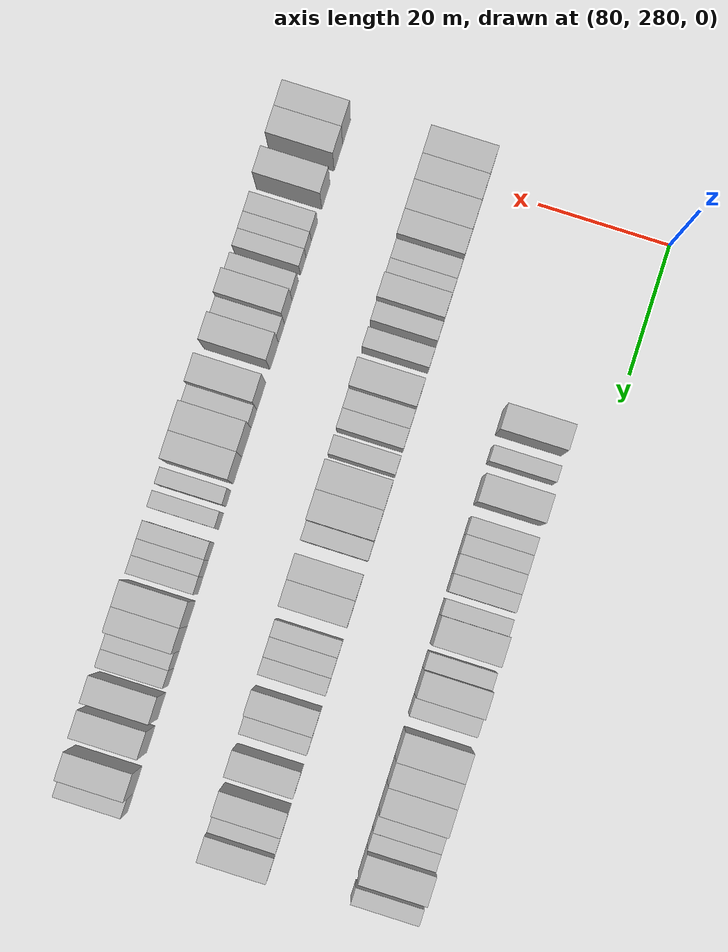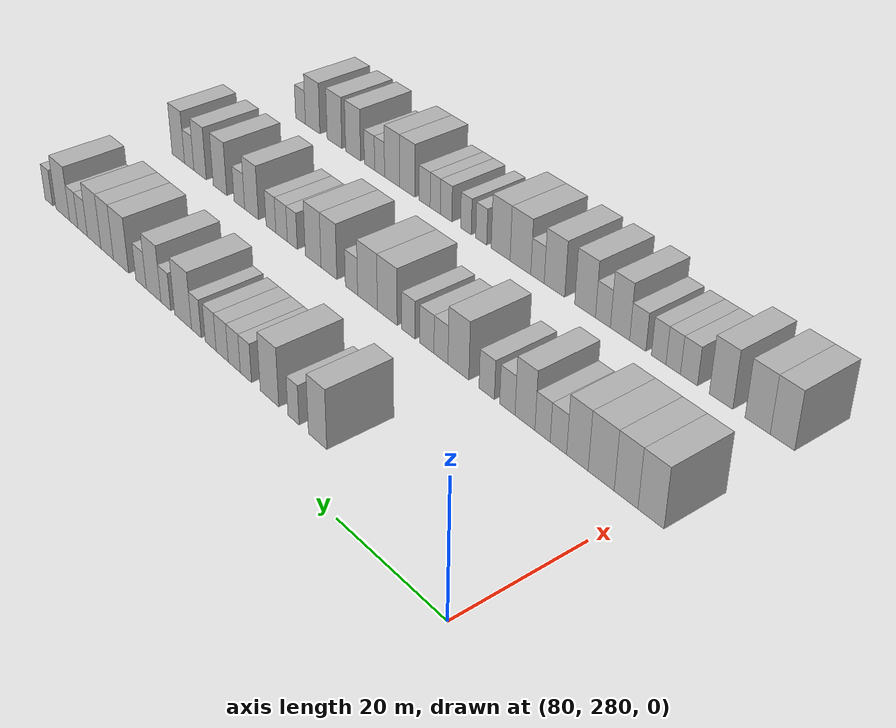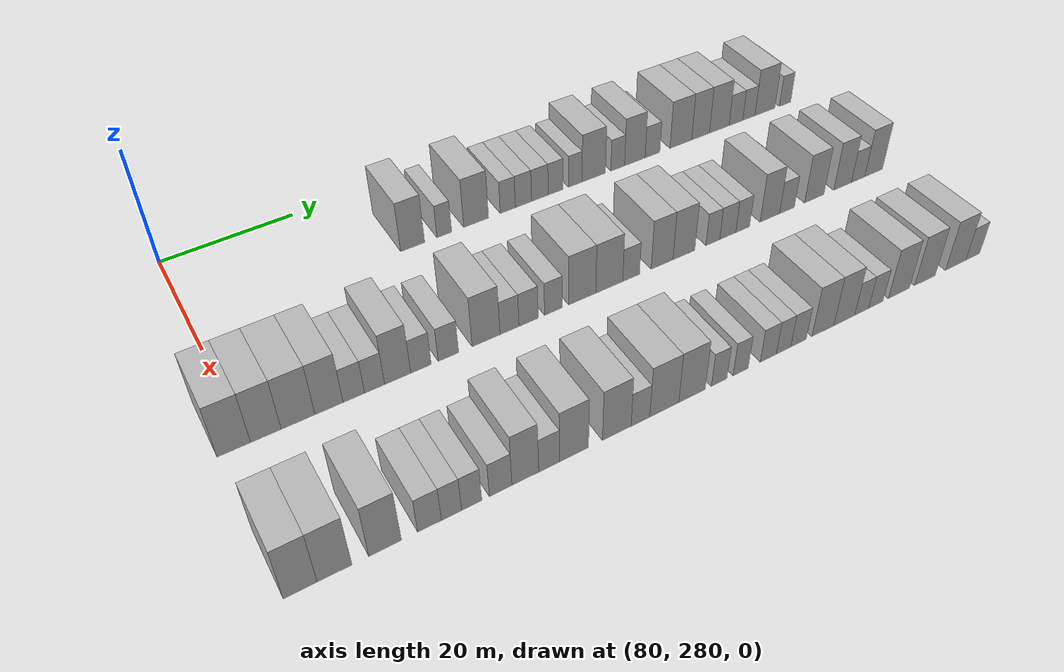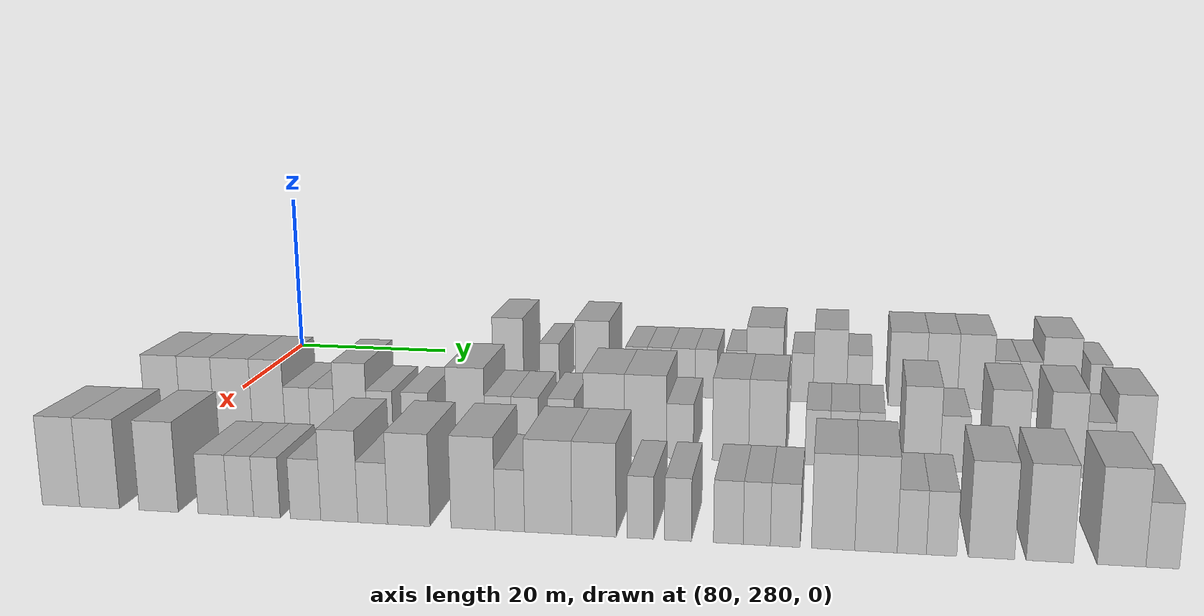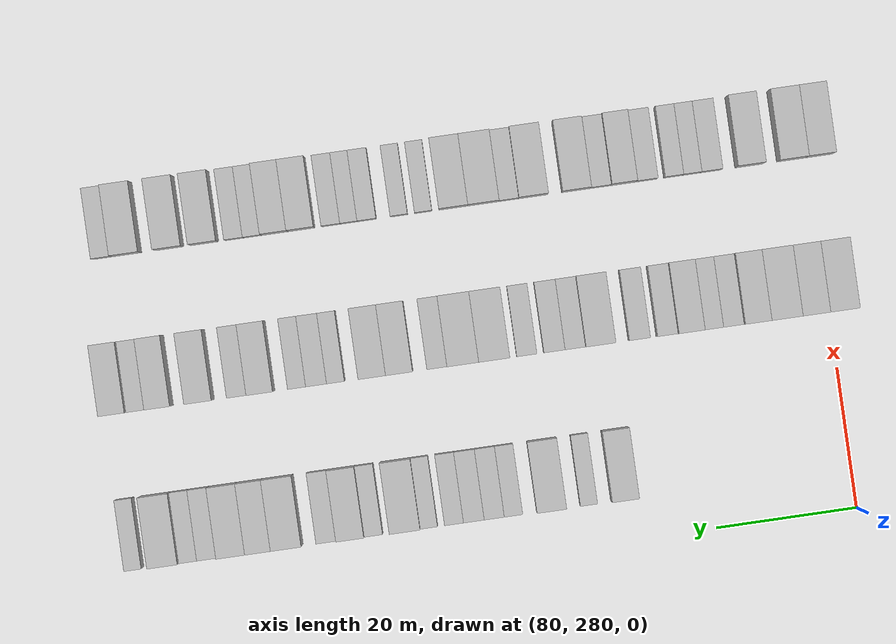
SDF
<sdf version="1.6">
 <world name="default">
  <model name="building_714">
   <static>1</static>
   <pose>91.0000 312.3939 0 0.000000 0.000000 0.000000</pose>
   <link name="link">
    <pose>0 0 4.50 0 0 0</pose>
    <collision name="collision"><geometry><box><size>10.0000 3.8322 9.0000</size></box></geometry></collision>
    <visual name="visual">
     <cast_shadows>0</cast_shadows>
     <geometry><box><size>10.0000 3.8322 9.0000</size></box></geometry>
     <material>
      <script>
       <uri>model://HANNAS_wall/materials/scripts</uri>
       <uri>model://HANNAS_wall/materials/textures</uri>
       <name>vrc/HANNAS_wall</name>
      </script>
     </material>
    </visual>
   </link>
  </model>
  <model name="building_715">
   <static>1</static>
   <pose>91.0000 317.5212 0 0.000000 0.000000 0.000000</pose>
   <link name="link">
    <pose>0 0 3.00 0 0 0</pose>
    <collision name="collision"><geometry><box><size>10.0000 2.4223 6.0000</size></box></geometry></collision>
    <visual name="visual">
     <cast_shadows>0</cast_shadows>
     <geometry><box><size>10.0000 2.4223 6.0000</size></box></geometry>
     <material>
      <script>
       <uri>model://HANNAS_wall/materials/scripts</uri>
       <uri>model://HANNAS_wall/materials/textures</uri>
       <name>vrc/HANNAS_wall</name>
      </script>
     </material>
    </visual>
   </link>
  </model>
  <model name="building_716">
   <static>1</static>
   <pose>91.0000 322.8168 0 0.000000 0.000000 0.000000</pose>
   <link name="link">
    <pose>0 0 4.50 0 0 0</pose>
    <collision name="collision"><geometry><box><size>10.0000 4.1690 9.0000</size></box></geometry></collision>
    <visual name="visual">
     <cast_shadows>0</cast_shadows>
     <geometry><box><size>10.0000 4.1690 9.0000</size></box></geometry>
     <material>
      <script>
       <uri>model://HANNAS_wall/materials/scripts</uri>
       <uri>model://HANNAS_wall/materials/textures</uri>
       <name>vrc/HANNAS_wall</name>
      </script>
     </material>
    </visual>
   </link>
  </model>
  <model name="building_717">
   <static>1</static>
   <pose>91.0000 328.2078 0 0.000000 0.000000 0.000000</pose>
   <link name="link">
    <pose>0 0 3.00 0 0 0</pose>
    <collision name="collision"><geometry><box><size>10.0000 2.6129 6.0000</size></box></geometry></collision>
    <visual name="visual">
     <cast_shadows>0</cast_shadows>
     <geometry><box><size>10.0000 2.6129 6.0000</size></box></geometry>
     <material>
      <script>
       <uri>model://HANNAS_wall/materials/scripts</uri>
       <uri>model://HANNAS_wall/materials/textures</uri>
       <name>vrc/HANNAS_wall</name>
      </script>
     </material>
    </visual>
   </link>
  </model>
  <model name="building_718">
   <static>1</static>
   <pose>91.0000 330.9367 0 0.000000 0.000000 0.000000</pose>
   <link name="link">
    <pose>0 0 3.00 0 0 0</pose>
    <collision name="collision"><geometry><box><size>10.0000 2.8450 6.0000</size></box></geometry></collision>
    <visual name="visual">
     <cast_shadows>0</cast_shadows>
     <geometry><box><size>10.0000 2.8450 6.0000</size></box></geometry>
     <material>
      <script>
       <uri>model://HANNAS_wall/materials/scripts</uri>
       <uri>model://HANNAS_wall/materials/textures</uri>
       <name>vrc/HANNAS_wall</name>
      </script>
     </material>
    </visual>
   </link>
  </model>
  <model name="building_719">
   <static>1</static>
   <pose>91.0000 333.8257 0 0.000000 0.000000 0.000000</pose>
   <link name="link">
    <pose>0 0 3.00 0 0 0</pose>
    <collision name="collision"><geometry><box><size>10.0000 2.9329 6.0000</size></box></geometry></collision>
    <visual name="visual">
     <cast_shadows>0</cast_shadows>
     <geometry><box><size>10.0000 2.9329 6.0000</size></box></geometry>
     <material>
      <script>
       <uri>model://HANNAS_wall/materials/scripts</uri>
       <uri>model://HANNAS_wall/materials/textures</uri>
       <name>vrc/HANNAS_wall</name>
      </script>
     </material>
    </visual>
   </link>
  </model>
  <model name="building_720">
   <static>1</static>
   <pose>91.0000 336.6312 0 0.000000 0.000000 0.000000</pose>
   <link name="link">
    <pose>0 0 3.00 0 0 0</pose>
    <collision name="collision"><geometry><box><size>10.0000 2.6782 6.0000</size></box></geometry></collision>
    <visual name="visual">
     <cast_shadows>0</cast_shadows>
     <geometry><box><size>10.0000 2.6782 6.0000</size></box></geometry>
     <material>
      <script>
       <uri>model://HANNAS_wall/materials/scripts</uri>
       <uri>model://HANNAS_wall/materials/textures</uri>
       <name>vrc/HANNAS_wall</name>
      </script>
     </material>
    </visual>
   </link>
  </model>
  <model name="building_721">
   <static>1</static>
   <pose>91.0000 340.1911 0 0.000000 0.000000 0.000000</pose>
   <link name="link">
    <pose>0 0 3.00 0 0 0</pose>
    <collision name="collision"><geometry><box><size>10.0000 2.4416 6.0000</size></box></geometry></collision>
    <visual name="visual">
     <cast_shadows>0</cast_shadows>
     <geometry><box><size>10.0000 2.4416 6.0000</size></box></geometry>
     <material>
      <script>
       <uri>model://HANNAS_wall/materials/scripts</uri>
       <uri>model://HANNAS_wall/materials/textures</uri>
       <name>vrc/HANNAS_wall</name>
      </script>
     </material>
    </visual>
   </link>
  </model>
  <model name="building_722">
   <static>1</static>
   <pose>91.0000 343.5843 0 0.000000 0.000000 0.000000</pose>
   <link name="link">
    <pose>0 0 4.50 0 0 0</pose>
    <collision name="collision"><geometry><box><size>10.0000 4.3447 9.0000</size></box></geometry></collision>
    <visual name="visual">
     <cast_shadows>0</cast_shadows>
     <geometry><box><size>10.0000 4.3447 9.0000</size></box></geometry>
     <material>
      <script>
       <uri>model://HANNAS_wall/materials/scripts</uri>
       <uri>model://HANNAS_wall/materials/textures</uri>
       <name>vrc/HANNAS_wall</name>
      </script>
     </material>
    </visual>
   </link>
  </model>
  <model name="building_723">
   <static>1</static>
   <pose>91.0000 348.0489 0 0.000000 0.000000 0.000000</pose>
   <link name="link">
    <pose>0 0 3.00 0 0 0</pose>
    <collision name="collision"><geometry><box><size>10.0000 2.5845 6.0000</size></box></geometry></collision>
    <visual name="visual">
     <cast_shadows>0</cast_shadows>
     <geometry><box><size>10.0000 2.5845 6.0000</size></box></geometry>
     <material>
      <script>
       <uri>model://HANNAS_wall/materials/scripts</uri>
       <uri>model://HANNAS_wall/materials/textures</uri>
       <name>vrc/HANNAS_wall</name>
      </script>
     </material>
    </visual>
   </link>
  </model>
  <model name="building_724">
   <static>1</static>
   <pose>91.0000 351.3135 0 0.000000 0.000000 0.000000</pose>
   <link name="link">
    <pose>0 0 4.50 0 0 0</pose>
    <collision name="collision"><geometry><box><size>10.0000 3.9448 9.0000</size></box></geometry></collision>
    <visual name="visual">
     <cast_shadows>0</cast_shadows>
     <geometry><box><size>10.0000 3.9448 9.0000</size></box></geometry>
     <material>
      <script>
       <uri>model://HANNAS_wall/materials/scripts</uri>
       <uri>model://HANNAS_wall/materials/textures</uri>
       <name>vrc/HANNAS_wall</name>
      </script>
     </material>
    </visual>
   </link>
  </model>
  <model name="building_725">
   <static>1</static>
   <pose>91.0000 354.7253 0 0.000000 0.000000 0.000000</pose>
   <link name="link">
    <pose>0 0 3.00 0 0 0</pose>
    <collision name="collision"><geometry><box><size>10.0000 2.8788 6.0000</size></box></geometry></collision>
    <visual name="visual">
     <cast_shadows>0</cast_shadows>
     <geometry><box><size>10.0000 2.8788 6.0000</size></box></geometry>
     <material>
      <script>
       <uri>model://HANNAS_wall/materials/scripts</uri>
       <uri>model://HANNAS_wall/materials/textures</uri>
       <name>vrc/HANNAS_wall</name>
      </script>
     </material>
    </visual>
   </link>
  </model>
  <model name="building_726">
   <static>1</static>
   <pose>91.0000 360.3305 0 0.000000 0.000000 0.000000</pose>
   <link name="link">
    <pose>0 0 4.50 0 0 0</pose>
    <collision name="collision"><geometry><box><size>10.0000 4.3316 9.0000</size></box></geometry></collision>
    <visual name="visual">
     <cast_shadows>0</cast_shadows>
     <geometry><box><size>10.0000 4.3316 9.0000</size></box></geometry>
     <material>
      <script>
       <uri>model://HANNAS_wall/materials/scripts</uri>
       <uri>model://HANNAS_wall/materials/textures</uri>
       <name>vrc/HANNAS_wall</name>
      </script>
     </material>
    </visual>
   </link>
  </model>
  <model name="building_727">
   <static>1</static>
   <pose>91.0000 364.3026 0 0.000000 0.000000 0.000000</pose>
   <link name="link">
    <pose>0 0 4.50 0 0 0</pose>
    <collision name="collision"><geometry><box><size>10.0000 3.6126 9.0000</size></box></geometry></collision>
    <visual name="visual">
     <cast_shadows>0</cast_shadows>
     <geometry><box><size>10.0000 3.6126 9.0000</size></box></geometry>
     <material>
      <script>
       <uri>model://HANNAS_wall/materials/scripts</uri>
       <uri>model://HANNAS_wall/materials/textures</uri>
       <name>vrc/HANNAS_wall</name>
      </script>
     </material>
    </visual>
   </link>
  </model>
  <model name="building_728">
   <static>1</static>
   <pose>91.0000 368.1407 0 0.000000 0.000000 0.000000</pose>
   <link name="link">
    <pose>0 0 4.50 0 0 0</pose>
    <collision name="collision"><geometry><box><size>10.0000 4.0636 9.0000</size></box></geometry></collision>
    <visual name="visual">
     <cast_shadows>0</cast_shadows>
     <geometry><box><size>10.0000 4.0636 9.0000</size></box></geometry>
     <material>
      <script>
       <uri>model://HANNAS_wall/materials/scripts</uri>
       <uri>model://HANNAS_wall/materials/textures</uri>
       <name>vrc/HANNAS_wall</name>
      </script>
     </material>
    </visual>
   </link>
  </model>
  <model name="building_729">
   <static>1</static>
   <pose>91.0000 371.6084 0 0.000000 0.000000 0.000000</pose>
   <link name="link">
    <pose>0 0 3.00 0 0 0</pose>
    <collision name="collision"><geometry><box><size>10.0000 2.8719 6.0000</size></box></geometry></collision>
    <visual name="visual">
     <cast_shadows>0</cast_shadows>
     <geometry><box><size>10.0000 2.8719 6.0000</size></box></geometry>
     <material>
      <script>
       <uri>model://HANNAS_wall/materials/scripts</uri>
       <uri>model://HANNAS_wall/materials/textures</uri>
       <name>vrc/HANNAS_wall</name>
      </script>
     </material>
    </visual>
   </link>
  </model>
  <model name="building_730">
   <static>1</static>
   <pose>91.0000 374.3259 0 0.000000 0.000000 0.000000</pose>
   <link name="link">
    <pose>0 0 3.00 0 0 0</pose>
    <collision name="collision"><geometry><box><size>10.0000 2.5630 6.0000</size></box></geometry></collision>
    <visual name="visual">
     <cast_shadows>0</cast_shadows>
     <geometry><box><size>10.0000 2.5630 6.0000</size></box></geometry>
     <material>
      <script>
       <uri>model://HANNAS_wall/materials/scripts</uri>
       <uri>model://HANNAS_wall/materials/textures</uri>
       <name>vrc/HANNAS_wall</name>
      </script>
     </material>
    </visual>
   </link>
  </model>
  <model name="building_731">
   <static>1</static>
   <pose>91.0000 377.7552 0 0.000000 0.000000 0.000000</pose>
   <link name="link">
    <pose>0 0 4.50 0 0 0</pose>
    <collision name="collision"><geometry><box><size>10.0000 4.2958 9.0000</size></box></geometry></collision>
    <visual name="visual">
     <cast_shadows>0</cast_shadows>
     <geometry><box><size>10.0000 4.2958 9.0000</size></box></geometry>
     <material>
      <script>
       <uri>model://HANNAS_wall/materials/scripts</uri>
       <uri>model://HANNAS_wall/materials/textures</uri>
       <name>vrc/HANNAS_wall</name>
      </script>
     </material>
    </visual>
   </link>
  </model>
  <model name="building_732">
   <static>1</static>
   <pose>91.0000 382.1310 0 0.000000 0.000000 0.000000</pose>
   <link name="link">
    <pose>0 0 3.00 0 0 0</pose>
    <collision name="collision"><geometry><box><size>10.0000 2.4558 6.0000</size></box></geometry></collision>
    <visual name="visual">
     <cast_shadows>0</cast_shadows>
     <geometry><box><size>10.0000 2.4558 6.0000</size></box></geometry>
     <material>
      <script>
       <uri>model://HANNAS_wall/materials/scripts</uri>
       <uri>model://HANNAS_wall/materials/textures</uri>
       <name>vrc/HANNAS_wall</name>
      </script>
     </material>
    </visual>
   </link>
  </model>
  <model name="building_886">
   <static>1</static>
   <pose>113.0000 278.3314 0 0.000000 0.000000 0.000000</pose>
   <link name="link">
    <pose>0 0 4.50 0 0 0</pose>
    <collision name="collision"><geometry><box><size>10.0000 4.1632 9.0000</size></box></geometry></collision>
    <visual name="visual">
     <cast_shadows>0</cast_shadows>
     <geometry><box><size>10.0000 4.1632 9.0000</size></box></geometry>
     <material>
      <script>
       <uri>model://HANNAS_wall/materials/scripts</uri>
       <uri>model://HANNAS_wall/materials/textures</uri>
       <name>vrc/HANNAS_wall</name>
      </script>
     </material>
    </visual>
   </link>
  </model>
  <model name="building_887">
   <static>1</static>
   <pose>113.0000 282.3554 0 0.000000 0.000000 0.000000</pose>
   <link name="link">
    <pose>0 0 4.50 0 0 0</pose>
    <collision name="collision"><geometry><box><size>10.0000 3.8848 9.0000</size></box></geometry></collision>
    <visual name="visual">
     <cast_shadows>0</cast_shadows>
     <geometry><box><size>10.0000 3.8848 9.0000</size></box></geometry>
     <material>
      <script>
       <uri>model://HANNAS_wall/materials/scripts</uri>
       <uri>model://HANNAS_wall/materials/textures</uri>
       <name>vrc/HANNAS_wall</name>
      </script>
     </material>
    </visual>
   </link>
  </model>
  <model name="building_888">
   <static>1</static>
   <pose>113.0000 286.4934 0 0.000000 0.000000 0.000000</pose>
   <link name="link">
    <pose>0 0 4.50 0 0 0</pose>
    <collision name="collision"><geometry><box><size>10.0000 4.3913 9.0000</size></box></geometry></collision>
    <visual name="visual">
     <cast_shadows>0</cast_shadows>
     <geometry><box><size>10.0000 4.3913 9.0000</size></box></geometry>
     <material>
      <script>
       <uri>model://HANNAS_wall/materials/scripts</uri>
       <uri>model://HANNAS_wall/materials/textures</uri>
       <name>vrc/HANNAS_wall</name>
      </script>
     </material>
    </visual>
   </link>
  </model>
  <model name="building_889">
   <static>1</static>
   <pose>113.0000 290.5592 0 0.000000 0.000000 0.000000</pose>
   <link name="link">
    <pose>0 0 4.50 0 0 0</pose>
    <collision name="collision"><geometry><box><size>10.0000 3.7402 9.0000</size></box></geometry></collision>
    <visual name="visual">
     <cast_shadows>0</cast_shadows>
     <geometry><box><size>10.0000 3.7402 9.0000</size></box></geometry>
     <material>
      <script>
       <uri>model://HANNAS_wall/materials/scripts</uri>
       <uri>model://HANNAS_wall/materials/textures</uri>
       <name>vrc/HANNAS_wall</name>
      </script>
     </material>
    </visual>
   </link>
  </model>
  <model name="building_890">
   <static>1</static>
   <pose>113.0000 293.8810 0 0.000000 0.000000 0.000000</pose>
   <link name="link">
    <pose>0 0 3.00 0 0 0</pose>
    <collision name="collision"><geometry><box><size>10.0000 2.9035 6.0000</size></box></geometry></collision>
    <visual name="visual">
     <cast_shadows>0</cast_shadows>
     <geometry><box><size>10.0000 2.9035 6.0000</size></box></geometry>
     <material>
      <script>
       <uri>model://HANNAS_wall/materials/scripts</uri>
       <uri>model://HANNAS_wall/materials/textures</uri>
       <name>vrc/HANNAS_wall</name>
      </script>
     </material>
    </visual>
   </link>
  </model>
  <model name="building_891">
   <static>1</static>
   <pose>113.0000 296.7143 0 0.000000 0.000000 0.000000</pose>
   <link name="link">
    <pose>0 0 3.00 0 0 0</pose>
    <collision name="collision"><geometry><box><size>10.0000 2.7632 6.0000</size></box></geometry></collision>
    <visual name="visual">
     <cast_shadows>0</cast_shadows>
     <geometry><box><size>10.0000 2.7632 6.0000</size></box></geometry>
     <material>
      <script>
       <uri>model://HANNAS_wall/materials/scripts</uri>
       <uri>model://HANNAS_wall/materials/textures</uri>
       <name>vrc/HANNAS_wall</name>
      </script>
     </material>
    </visual>
   </link>
  </model>
  <model name="building_892">
   <static>1</static>
   <pose>113.0000 299.9362 0 0.000000 0.000000 0.000000</pose>
   <link name="link">
    <pose>0 0 4.50 0 0 0</pose>
    <collision name="collision"><geometry><box><size>10.0000 3.6806 9.0000</size></box></geometry></collision>
    <visual name="visual">
     <cast_shadows>0</cast_shadows>
     <geometry><box><size>10.0000 3.6806 9.0000</size></box></geometry>
     <material>
      <script>
       <uri>model://HANNAS_wall/materials/scripts</uri>
       <uri>model://HANNAS_wall/materials/textures</uri>
       <name>vrc/HANNAS_wall</name>
      </script>
     </material>
    </visual>
   </link>
  </model>
  <model name="building_893">
   <static>1</static>
   <pose>113.0000 303.2305 0 0.000000 0.000000 0.000000</pose>
   <link name="link">
    <pose>0 0 3.00 0 0 0</pose>
    <collision name="collision"><geometry><box><size>10.0000 2.9080 6.0000</size></box></geometry></collision>
    <visual name="visual">
     <cast_shadows>0</cast_shadows>
     <geometry><box><size>10.0000 2.9080 6.0000</size></box></geometry>
     <material>
      <script>
       <uri>model://HANNAS_wall/materials/scripts</uri>
       <uri>model://HANNAS_wall/materials/textures</uri>
       <name>vrc/HANNAS_wall</name>
      </script>
     </material>
    </visual>
   </link>
  </model>
  <model name="building_894">
   <static>1</static>
   <pose>113.0000 307.1765 0 0.000000 0.000000 0.000000</pose>
   <link name="link">
    <pose>0 0 3.00 0 0 0</pose>
    <collision name="collision"><geometry><box><size>10.0000 2.9838 6.0000</size></box></geometry></collision>
    <visual name="visual">
     <cast_shadows>0</cast_shadows>
     <geometry><box><size>10.0000 2.9838 6.0000</size></box></geometry>
     <material>
      <script>
       <uri>model://HANNAS_wall/materials/scripts</uri>
       <uri>model://HANNAS_wall/materials/textures</uri>
       <name>vrc/HANNAS_wall</name>
      </script>
     </material>
    </visual>
   </link>
  </model>
  <model name="building_895">
   <static>1</static>
   <pose>113.0000 312.7704 0 0.000000 0.000000 0.000000</pose>
   <link name="link">
    <pose>0 0 4.50 0 0 0</pose>
    <collision name="collision"><geometry><box><size>10.0000 4.2040 9.0000</size></box></geometry></collision>
    <visual name="visual">
     <cast_shadows>0</cast_shadows>
     <geometry><box><size>10.0000 4.2040 9.0000</size></box></geometry>
     <material>
      <script>
       <uri>model://HANNAS_wall/materials/scripts</uri>
       <uri>model://HANNAS_wall/materials/textures</uri>
       <name>vrc/HANNAS_wall</name>
      </script>
     </material>
    </visual>
   </link>
  </model>
  <model name="building_896">
   <static>1</static>
   <pose>113.0000 316.3209 0 0.000000 0.000000 0.000000</pose>
   <link name="link">
    <pose>0 0 3.00 0 0 0</pose>
    <collision name="collision"><geometry><box><size>10.0000 2.8971 6.0000</size></box></geometry></collision>
    <visual name="visual">
     <cast_shadows>0</cast_shadows>
     <geometry><box><size>10.0000 2.8971 6.0000</size></box></geometry>
     <material>
      <script>
       <uri>model://HANNAS_wall/materials/scripts</uri>
       <uri>model://HANNAS_wall/materials/textures</uri>
       <name>vrc/HANNAS_wall</name>
      </script>
     </material>
    </visual>
   </link>
  </model>
  <model name="building_897">
   <static>1</static>
   <pose>113.0000 319.2629 0 0.000000 0.000000 0.000000</pose>
   <link name="link">
    <pose>0 0 3.00 0 0 0</pose>
    <collision name="collision"><geometry><box><size>10.0000 2.9870 6.0000</size></box></geometry></collision>
    <visual name="visual">
     <cast_shadows>0</cast_shadows>
     <geometry><box><size>10.0000 2.9870 6.0000</size></box></geometry>
     <material>
      <script>
       <uri>model://HANNAS_wall/materials/scripts</uri>
       <uri>model://HANNAS_wall/materials/textures</uri>
       <name>vrc/HANNAS_wall</name>
      </script>
     </material>
    </visual>
   </link>
  </model>
  <model name="building_898">
   <static>1</static>
   <pose>113.0000 323.1801 0 0.000000 0.000000 0.000000</pose>
   <link name="link">
    <pose>0 0 3.00 0 0 0</pose>
    <collision name="collision"><geometry><box><size>10.0000 2.8473 6.0000</size></box></geometry></collision>
    <visual name="visual">
     <cast_shadows>0</cast_shadows>
     <geometry><box><size>10.0000 2.8473 6.0000</size></box></geometry>
     <material>
      <script>
       <uri>model://HANNAS_wall/materials/scripts</uri>
       <uri>model://HANNAS_wall/materials/textures</uri>
       <name>vrc/HANNAS_wall</name>
      </script>
     </material>
    </visual>
   </link>
  </model>
  <model name="building_899">
   <static>1</static>
   <pose>113.0000 327.8056 0 0.000000 0.000000 0.000000</pose>
   <link name="link">
    <pose>0 0 4.50 0 0 0</pose>
    <collision name="collision"><geometry><box><size>10.0000 4.4037 9.0000</size></box></geometry></collision>
    <visual name="visual">
     <cast_shadows>0</cast_shadows>
     <geometry><box><size>10.0000 4.4037 9.0000</size></box></geometry>
     <material>
      <script>
       <uri>model://HANNAS_wall/materials/scripts</uri>
       <uri>model://HANNAS_wall/materials/textures</uri>
       <name>vrc/HANNAS_wall</name>
      </script>
     </material>
    </visual>
   </link>
  </model>
  <model name="building_900">
   <static>1</static>
   <pose>113.0000 332.2435 0 0.000000 0.000000 0.000000</pose>
   <link name="link">
    <pose>0 0 4.50 0 0 0</pose>
    <collision name="collision"><geometry><box><size>10.0000 4.4721 9.0000</size></box></geometry></collision>
    <visual name="visual">
     <cast_shadows>0</cast_shadows>
     <geometry><box><size>10.0000 4.4721 9.0000</size></box></geometry>
     <material>
      <script>
       <uri>model://HANNAS_wall/materials/scripts</uri>
       <uri>model://HANNAS_wall/materials/textures</uri>
       <name>vrc/HANNAS_wall</name>
      </script>
     </material>
    </visual>
   </link>
  </model>
  <model name="building_901">
   <static>1</static>
   <pose>113.0000 335.9062 0 0.000000 0.000000 0.000000</pose>
   <link name="link">
    <pose>0 0 3.00 0 0 0</pose>
    <collision name="collision"><geometry><box><size>10.0000 2.8534 6.0000</size></box></geometry></collision>
    <visual name="visual">
     <cast_shadows>0</cast_shadows>
     <geometry><box><size>10.0000 2.8534 6.0000</size></box></geometry>
     <material>
      <script>
       <uri>model://HANNAS_wall/materials/scripts</uri>
       <uri>model://HANNAS_wall/materials/textures</uri>
       <name>vrc/HANNAS_wall</name>
      </script>
     </material>
    </visual>
   </link>
  </model>
  <model name="building_902">
   <static>1</static>
   <pose>113.0000 341.2361 0 0.000000 0.000000 0.000000</pose>
   <link name="link">
    <pose>0 0 4.50 0 0 0</pose>
    <collision name="collision"><geometry><box><size>10.0000 3.8063 9.0000</size></box></geometry></collision>
    <visual name="visual">
     <cast_shadows>0</cast_shadows>
     <geometry><box><size>10.0000 3.8063 9.0000</size></box></geometry>
     <material>
      <script>
       <uri>model://HANNAS_wall/materials/scripts</uri>
       <uri>model://HANNAS_wall/materials/textures</uri>
       <name>vrc/HANNAS_wall</name>
      </script>
     </material>
    </visual>
   </link>
  </model>
  <model name="building_903">
   <static>1</static>
   <pose>113.0000 345.0734 0 0.000000 0.000000 0.000000</pose>
   <link name="link">
    <pose>0 0 4.50 0 0 0</pose>
    <collision name="collision"><geometry><box><size>10.0000 3.8685 9.0000</size></box></geometry></collision>
    <visual name="visual">
     <cast_shadows>0</cast_shadows>
     <geometry><box><size>10.0000 3.8685 9.0000</size></box></geometry>
     <material>
      <script>
       <uri>model://HANNAS_wall/materials/scripts</uri>
       <uri>model://HANNAS_wall/materials/textures</uri>
       <name>vrc/HANNAS_wall</name>
      </script>
     </material>
    </visual>
   </link>
  </model>
  <model name="building_904">
   <static>1</static>
   <pose>113.0000 350.2714 0 0.000000 0.000000 0.000000</pose>
   <link name="link">
    <pose>0 0 3.00 0 0 0</pose>
    <collision name="collision"><geometry><box><size>10.0000 2.5274 6.0000</size></box></geometry></collision>
    <visual name="visual">
     <cast_shadows>0</cast_shadows>
     <geometry><box><size>10.0000 2.5274 6.0000</size></box></geometry>
     <material>
      <script>
       <uri>model://HANNAS_wall/materials/scripts</uri>
       <uri>model://HANNAS_wall/materials/textures</uri>
       <name>vrc/HANNAS_wall</name>
      </script>
     </material>
    </visual>
   </link>
  </model>
  <model name="building_905">
   <static>1</static>
   <pose>113.0000 353.0117 0 0.000000 0.000000 0.000000</pose>
   <link name="link">
    <pose>0 0 3.00 0 0 0</pose>
    <collision name="collision"><geometry><box><size>10.0000 2.9531 6.0000</size></box></geometry></collision>
    <visual name="visual">
     <cast_shadows>0</cast_shadows>
     <geometry><box><size>10.0000 2.9531 6.0000</size></box></geometry>
     <material>
      <script>
       <uri>model://HANNAS_wall/materials/scripts</uri>
       <uri>model://HANNAS_wall/materials/textures</uri>
       <name>vrc/HANNAS_wall</name>
      </script>
     </material>
    </visual>
   </link>
  </model>
  <model name="building_906">
   <static>1</static>
   <pose>113.0000 355.7721 0 0.000000 0.000000 0.000000</pose>
   <link name="link">
    <pose>0 0 3.00 0 0 0</pose>
    <collision name="collision"><geometry><box><size>10.0000 2.5679 6.0000</size></box></geometry></collision>
    <visual name="visual">
     <cast_shadows>0</cast_shadows>
     <geometry><box><size>10.0000 2.5679 6.0000</size></box></geometry>
     <material>
      <script>
       <uri>model://HANNAS_wall/materials/scripts</uri>
       <uri>model://HANNAS_wall/materials/textures</uri>
       <name>vrc/HANNAS_wall</name>
      </script>
     </material>
    </visual>
   </link>
  </model>
  <model name="building_907">
   <static>1</static>
   <pose>113.0000 360.9203 0 0.000000 0.000000 0.000000</pose>
   <link name="link">
    <pose>0 0 4.50 0 0 0</pose>
    <collision name="collision"><geometry><box><size>10.0000 3.7284 9.0000</size></box></geometry></collision>
    <visual name="visual">
     <cast_shadows>0</cast_shadows>
     <geometry><box><size>10.0000 3.7284 9.0000</size></box></geometry>
     <material>
      <script>
       <uri>model://HANNAS_wall/materials/scripts</uri>
       <uri>model://HANNAS_wall/materials/textures</uri>
       <name>vrc/HANNAS_wall</name>
      </script>
     </material>
    </visual>
   </link>
  </model>
  <model name="building_908">
   <static>1</static>
   <pose>113.0000 364.2397 0 0.000000 0.000000 0.000000</pose>
   <link name="link">
    <pose>0 0 3.00 0 0 0</pose>
    <collision name="collision"><geometry><box><size>10.0000 2.9104 6.0000</size></box></geometry></collision>
    <visual name="visual">
     <cast_shadows>0</cast_shadows>
     <geometry><box><size>10.0000 2.9104 6.0000</size></box></geometry>
     <material>
      <script>
       <uri>model://HANNAS_wall/materials/scripts</uri>
       <uri>model://HANNAS_wall/materials/textures</uri>
       <name>vrc/HANNAS_wall</name>
      </script>
     </material>
    </visual>
   </link>
  </model>
  <model name="building_909">
   <static>1</static>
   <pose>113.0000 369.6189 0 0.000000 0.000000 0.000000</pose>
   <link name="link">
    <pose>0 0 4.50 0 0 0</pose>
    <collision name="collision"><geometry><box><size>10.0000 3.8479 9.0000</size></box></geometry></collision>
    <visual name="visual">
     <cast_shadows>0</cast_shadows>
     <geometry><box><size>10.0000 3.8479 9.0000</size></box></geometry>
     <material>
      <script>
       <uri>model://HANNAS_wall/materials/scripts</uri>
       <uri>model://HANNAS_wall/materials/textures</uri>
       <name>vrc/HANNAS_wall</name>
      </script>
     </material>
    </visual>
   </link>
  </model>
  <model name="building_910">
   <static>1</static>
   <pose>113.0000 375.3530 0 0.000000 0.000000 0.000000</pose>
   <link name="link">
    <pose>0 0 4.50 0 0 0</pose>
    <collision name="collision"><geometry><box><size>10.0000 3.6204 9.0000</size></box></geometry></collision>
    <visual name="visual">
     <cast_shadows>0</cast_shadows>
     <geometry><box><size>10.0000 3.6204 9.0000</size></box></geometry>
     <material>
      <script>
       <uri>model://HANNAS_wall/materials/scripts</uri>
       <uri>model://HANNAS_wall/materials/textures</uri>
       <name>vrc/HANNAS_wall</name>
      </script>
     </material>
    </visual>
   </link>
  </model>
  <model name="building_911">
   <static>1</static>
   <pose>113.0000 378.5514 0 0.000000 0.000000 0.000000</pose>
   <link name="link">
    <pose>0 0 3.00 0 0 0</pose>
    <collision name="collision"><geometry><box><size>10.0000 2.7765 6.0000</size></box></geometry></collision>
    <visual name="visual">
     <cast_shadows>0</cast_shadows>
     <geometry><box><size>10.0000 2.7765 6.0000</size></box></geometry>
     <material>
      <script>
       <uri>model://HANNAS_wall/materials/scripts</uri>
       <uri>model://HANNAS_wall/materials/textures</uri>
       <name>vrc/HANNAS_wall</name>
      </script>
     </material>
    </visual>
   </link>
  </model>
  <model name="building_912">
   <static>1</static>
   <pose>113.0000 381.8034 0 0.000000 0.000000 0.000000</pose>
   <link name="link">
    <pose>0 0 4.50 0 0 0</pose>
    <collision name="collision"><geometry><box><size>10.0000 3.7273 9.0000</size></box></geometry></collision>
    <visual name="visual">
     <cast_shadows>0</cast_shadows>
     <geometry><box><size>10.0000 3.7273 9.0000</size></box></geometry>
     <material>
      <script>
       <uri>model://HANNAS_wall/materials/scripts</uri>
       <uri>model://HANNAS_wall/materials/textures</uri>
       <name>vrc/HANNAS_wall</name>
      </script>
     </material>
    </visual>
   </link>
  </model>
  <model name="building_1072">
   <static>1</static>
   <pose>135.0000 278.3611 0 0.000000 0.000000 0.000000</pose>
   <link name="link">
    <pose>0 0 4.50 0 0 0</pose>
    <collision name="collision"><geometry><box><size>10.0000 3.8462 9.0000</size></box></geometry></collision>
    <visual name="visual">
     <cast_shadows>0</cast_shadows>
     <geometry><box><size>10.0000 3.8462 9.0000</size></box></geometry>
     <material>
      <script>
       <uri>model://HANNAS_wall/materials/scripts</uri>
       <uri>model://HANNAS_wall/materials/textures</uri>
       <name>vrc/HANNAS_wall</name>
      </script>
     </material>
    </visual>
   </link>
  </model>
  <model name="building_1073">
   <static>1</static>
   <pose>135.0000 282.3120 0 0.000000 0.000000 0.000000</pose>
   <link name="link">
    <pose>0 0 4.50 0 0 0</pose>
    <collision name="collision"><geometry><box><size>10.0000 4.0557 9.0000</size></box></geometry></collision>
    <visual name="visual">
     <cast_shadows>0</cast_shadows>
     <geometry><box><size>10.0000 4.0557 9.0000</size></box></geometry>
     <material>
      <script>
       <uri>model://HANNAS_wall/materials/scripts</uri>
       <uri>model://HANNAS_wall/materials/textures</uri>
       <name>vrc/HANNAS_wall</name>
      </script>
     </material>
    </visual>
   </link>
  </model>
  <model name="building_1074">
   <static>1</static>
   <pose>135.0000 288.3174 0 0.000000 0.000000 0.000000</pose>
   <link name="link">
    <pose>0 0 4.50 0 0 0</pose>
    <collision name="collision"><geometry><box><size>10.0000 3.9551 9.0000</size></box></geometry></collision>
    <visual name="visual">
     <cast_shadows>0</cast_shadows>
     <geometry><box><size>10.0000 3.9551 9.0000</size></box></geometry>
     <material>
      <script>
       <uri>model://HANNAS_wall/materials/scripts</uri>
       <uri>model://HANNAS_wall/materials/textures</uri>
       <name>vrc/HANNAS_wall</name>
      </script>
     </material>
    </visual>
   </link>
  </model>
  <model name="building_1075">
   <static>1</static>
   <pose>135.0000 293.7822 0 0.000000 0.000000 0.000000</pose>
   <link name="link">
    <pose>0 0 3.00 0 0 0</pose>
    <collision name="collision"><geometry><box><size>10.0000 2.9745 6.0000</size></box></geometry></collision>
    <visual name="visual">
     <cast_shadows>0</cast_shadows>
     <geometry><box><size>10.0000 2.9745 6.0000</size></box></geometry>
     <material>
      <script>
       <uri>model://HANNAS_wall/materials/scripts</uri>
       <uri>model://HANNAS_wall/materials/textures</uri>
       <name>vrc/HANNAS_wall</name>
      </script>
     </material>
    </visual>
   </link>
  </model>
  <model name="building_1076">
   <static>1</static>
   <pose>135.0000 296.5527 0 0.000000 0.000000 0.000000</pose>
   <link name="link">
    <pose>0 0 3.00 0 0 0</pose>
    <collision name="collision"><geometry><box><size>10.0000 2.5665 6.0000</size></box></geometry></collision>
    <visual name="visual">
     <cast_shadows>0</cast_shadows>
     <geometry><box><size>10.0000 2.5665 6.0000</size></box></geometry>
     <material>
      <script>
       <uri>model://HANNAS_wall/materials/scripts</uri>
       <uri>model://HANNAS_wall/materials/textures</uri>
       <name>vrc/HANNAS_wall</name>
      </script>
     </material>
    </visual>
   </link>
  </model>
  <model name="building_1077">
   <static>1</static>
   <pose>135.0000 299.1460 0 0.000000 0.000000 0.000000</pose>
   <link name="link">
    <pose>0 0 3.00 0 0 0</pose>
    <collision name="collision"><geometry><box><size>10.0000 2.6201 6.0000</size></box></geometry></collision>
    <visual name="visual">
     <cast_shadows>0</cast_shadows>
     <geometry><box><size>10.0000 2.6201 6.0000</size></box></geometry>
     <material>
      <script>
       <uri>model://HANNAS_wall/materials/scripts</uri>
       <uri>model://HANNAS_wall/materials/textures</uri>
       <name>vrc/HANNAS_wall</name>
      </script>
     </material>
    </visual>
   </link>
  </model>
  <model name="building_1078">
   <static>1</static>
   <pose>135.0000 302.9539 0 0.000000 0.000000 0.000000</pose>
   <link name="link">
    <pose>0 0 3.00 0 0 0</pose>
    <collision name="collision"><geometry><box><size>10.0000 2.9957 6.0000</size></box></geometry></collision>
    <visual name="visual">
     <cast_shadows>0</cast_shadows>
     <geometry><box><size>10.0000 2.9957 6.0000</size></box></geometry>
     <material>
      <script>
       <uri>model://HANNAS_wall/materials/scripts</uri>
       <uri>model://HANNAS_wall/materials/textures</uri>
       <name>vrc/HANNAS_wall</name>
      </script>
     </material>
    </visual>
   </link>
  </model>
  <model name="building_1079">
   <static>1</static>
   <pose>135.0000 306.2611 0 0.000000 0.000000 0.000000</pose>
   <link name="link">
    <pose>0 0 4.50 0 0 0</pose>
    <collision name="collision"><geometry><box><size>10.0000 3.6187 9.0000</size></box></geometry></collision>
    <visual name="visual">
     <cast_shadows>0</cast_shadows>
     <geometry><box><size>10.0000 3.6187 9.0000</size></box></geometry>
     <material>
      <script>
       <uri>model://HANNAS_wall/materials/scripts</uri>
       <uri>model://HANNAS_wall/materials/textures</uri>
       <name>vrc/HANNAS_wall</name>
      </script>
     </material>
    </visual>
   </link>
  </model>
  <model name="building_1080">
   <static>1</static>
   <pose>135.0000 309.5107 0 0.000000 0.000000 0.000000</pose>
   <link name="link">
    <pose>0 0 3.00 0 0 0</pose>
    <collision name="collision"><geometry><box><size>10.0000 2.8804 6.0000</size></box></geometry></collision>
    <visual name="visual">
     <cast_shadows>0</cast_shadows>
     <geometry><box><size>10.0000 2.8804 6.0000</size></box></geometry>
     <material>
      <script>
       <uri>model://HANNAS_wall/materials/scripts</uri>
       <uri>model://HANNAS_wall/materials/textures</uri>
       <name>vrc/HANNAS_wall</name>
      </script>
     </material>
    </visual>
   </link>
  </model>
  <model name="building_1081">
   <static>1</static>
   <pose>135.0000 312.9881 0 0.000000 0.000000 0.000000</pose>
   <link name="link">
    <pose>0 0 4.50 0 0 0</pose>
    <collision name="collision"><geometry><box><size>10.0000 4.0743 9.0000</size></box></geometry></collision>
    <visual name="visual">
     <cast_shadows>0</cast_shadows>
     <geometry><box><size>10.0000 4.0743 9.0000</size></box></geometry>
     <material>
      <script>
       <uri>model://HANNAS_wall/materials/scripts</uri>
       <uri>model://HANNAS_wall/materials/textures</uri>
       <name>vrc/HANNAS_wall</name>
      </script>
     </material>
    </visual>
   </link>
  </model>
  <model name="building_1082">
   <static>1</static>
   <pose>135.0000 319.1116 0 0.000000 0.000000 0.000000</pose>
   <link name="link">
    <pose>0 0 4.50 0 0 0</pose>
    <collision name="collision"><geometry><box><size>10.0000 4.1729 9.0000</size></box></geometry></collision>
    <visual name="visual">
     <cast_shadows>0</cast_shadows>
     <geometry><box><size>10.0000 4.1729 9.0000</size></box></geometry>
     <material>
      <script>
       <uri>model://HANNAS_wall/materials/scripts</uri>
       <uri>model://HANNAS_wall/materials/textures</uri>
       <name>vrc/HANNAS_wall</name>
      </script>
     </material>
    </visual>
   </link>
  </model>
  <model name="building_1083">
   <static>1</static>
   <pose>135.0000 322.5927 0 0.000000 0.000000 0.000000</pose>
   <link name="link">
    <pose>0 0 3.00 0 0 0</pose>
    <collision name="collision"><geometry><box><size>10.0000 2.7893 6.0000</size></box></geometry></collision>
    <visual name="visual">
     <cast_shadows>0</cast_shadows>
     <geometry><box><size>10.0000 2.7893 6.0000</size></box></geometry>
     <material>
      <script>
       <uri>model://HANNAS_wall/materials/scripts</uri>
       <uri>model://HANNAS_wall/materials/textures</uri>
       <name>vrc/HANNAS_wall</name>
      </script>
     </material>
    </visual>
   </link>
  </model>
  <model name="building_1084">
   <static>1</static>
   <pose>135.0000 326.1973 0 0.000000 0.000000 0.000000</pose>
   <link name="link">
    <pose>0 0 4.50 0 0 0</pose>
    <collision name="collision"><geometry><box><size>10.0000 4.4199 9.0000</size></box></geometry></collision>
    <visual name="visual">
     <cast_shadows>0</cast_shadows>
     <geometry><box><size>10.0000 4.4199 9.0000</size></box></geometry>
     <material>
      <script>
       <uri>model://HANNAS_wall/materials/scripts</uri>
       <uri>model://HANNAS_wall/materials/textures</uri>
       <name>vrc/HANNAS_wall</name>
      </script>
     </material>
    </visual>
   </link>
  </model>
  <model name="building_1085">
   <static>1</static>
   <pose>135.0000 330.4592 0 0.000000 0.000000 0.000000</pose>
   <link name="link">
    <pose>0 0 4.50 0 0 0</pose>
    <collision name="collision"><geometry><box><size>10.0000 4.1040 9.0000</size></box></geometry></collision>
    <visual name="visual">
     <cast_shadows>0</cast_shadows>
     <geometry><box><size>10.0000 4.1040 9.0000</size></box></geometry>
     <material>
      <script>
       <uri>model://HANNAS_wall/materials/scripts</uri>
       <uri>model://HANNAS_wall/materials/textures</uri>
       <name>vrc/HANNAS_wall</name>
      </script>
     </material>
    </visual>
   </link>
  </model>
  <model name="building_1086">
   <static>1</static>
   <pose>135.0000 334.7383 0 0.000000 0.000000 0.000000</pose>
   <link name="link">
    <pose>0 0 3.00 0 0 0</pose>
    <collision name="collision"><geometry><box><size>10.0000 2.4541 6.0000</size></box></geometry></collision>
    <visual name="visual">
     <cast_shadows>0</cast_shadows>
     <geometry><box><size>10.0000 2.4541 6.0000</size></box></geometry>
     <material>
      <script>
       <uri>model://HANNAS_wall/materials/scripts</uri>
       <uri>model://HANNAS_wall/materials/textures</uri>
       <name>vrc/HANNAS_wall</name>
      </script>
     </material>
    </visual>
   </link>
  </model>
  <model name="building_1087">
   <static>1</static>
   <pose>135.0000 338.1899 0 0.000000 0.000000 0.000000</pose>
   <link name="link">
    <pose>0 0 3.00 0 0 0</pose>
    <collision name="collision"><geometry><box><size>10.0000 2.4491 6.0000</size></box></geometry></collision>
    <visual name="visual">
     <cast_shadows>0</cast_shadows>
     <geometry><box><size>10.0000 2.4491 6.0000</size></box></geometry>
     <material>
      <script>
       <uri>model://HANNAS_wall/materials/scripts</uri>
       <uri>model://HANNAS_wall/materials/textures</uri>
       <name>vrc/HANNAS_wall</name>
      </script>
     </material>
    </visual>
   </link>
  </model>
  <model name="building_1088">
   <static>1</static>
   <pose>135.0000 342.7553 0 0.000000 0.000000 0.000000</pose>
   <link name="link">
    <pose>0 0 3.00 0 0 0</pose>
    <collision name="collision"><geometry><box><size>10.0000 2.6818 6.0000</size></box></geometry></collision>
    <visual name="visual">
     <cast_shadows>0</cast_shadows>
     <geometry><box><size>10.0000 2.6818 6.0000</size></box></geometry>
     <material>
      <script>
       <uri>model://HANNAS_wall/materials/scripts</uri>
       <uri>model://HANNAS_wall/materials/textures</uri>
       <name>vrc/HANNAS_wall</name>
      </script>
     </material>
    </visual>
   </link>
  </model>
  <model name="building_1089">
   <static>1</static>
   <pose>135.0000 345.3144 0 0.000000 0.000000 0.000000</pose>
   <link name="link">
    <pose>0 0 3.00 0 0 0</pose>
    <collision name="collision"><geometry><box><size>10.0000 2.4364 6.0000</size></box></geometry></collision>
    <visual name="visual">
     <cast_shadows>0</cast_shadows>
     <geometry><box><size>10.0000 2.4364 6.0000</size></box></geometry>
     <material>
      <script>
       <uri>model://HANNAS_wall/materials/scripts</uri>
       <uri>model://HANNAS_wall/materials/textures</uri>
       <name>vrc/HANNAS_wall</name>
      </script>
     </material>
    </visual>
   </link>
  </model>
  <model name="building_1090">
   <static>1</static>
   <pose>135.0000 347.8639 0 0.000000 0.000000 0.000000</pose>
   <link name="link">
    <pose>0 0 3.00 0 0 0</pose>
    <collision name="collision"><geometry><box><size>10.0000 2.6625 6.0000</size></box></geometry></collision>
    <visual name="visual">
     <cast_shadows>0</cast_shadows>
     <geometry><box><size>10.0000 2.6625 6.0000</size></box></geometry>
     <material>
      <script>
       <uri>model://HANNAS_wall/materials/scripts</uri>
       <uri>model://HANNAS_wall/materials/textures</uri>
       <name>vrc/HANNAS_wall</name>
      </script>
     </material>
    </visual>
   </link>
  </model>
  <model name="building_1091">
   <static>1</static>
   <pose>135.0000 352.1154 0 0.000000 0.000000 0.000000</pose>
   <link name="link">
    <pose>0 0 4.50 0 0 0</pose>
    <collision name="collision"><geometry><box><size>10.0000 3.8406 9.0000</size></box></geometry></collision>
    <visual name="visual">
     <cast_shadows>0</cast_shadows>
     <geometry><box><size>10.0000 3.8406 9.0000</size></box></geometry>
     <material>
      <script>
       <uri>model://HANNAS_wall/materials/scripts</uri>
       <uri>model://HANNAS_wall/materials/textures</uri>
       <name>vrc/HANNAS_wall</name>
      </script>
     </material>
    </visual>
   </link>
  </model>
  <model name="building_1092">
   <static>1</static>
   <pose>135.0000 355.9000 0 0.000000 0.000000 0.000000</pose>
   <link name="link">
    <pose>0 0 4.50 0 0 0</pose>
    <collision name="collision"><geometry><box><size>10.0000 3.7286 9.0000</size></box></geometry></collision>
    <visual name="visual">
     <cast_shadows>0</cast_shadows>
     <geometry><box><size>10.0000 3.7286 9.0000</size></box></geometry>
     <material>
      <script>
       <uri>model://HANNAS_wall/materials/scripts</uri>
       <uri>model://HANNAS_wall/materials/textures</uri>
       <name>vrc/HANNAS_wall</name>
      </script>
     </material>
    </visual>
   </link>
  </model>
  <model name="building_1093">
   <static>1</static>
   <pose>135.0000 359.0373 0 0.000000 0.000000 0.000000</pose>
   <link name="link">
    <pose>0 0 3.00 0 0 0</pose>
    <collision name="collision"><geometry><box><size>10.0000 2.5461 6.0000</size></box></geometry></collision>
    <visual name="visual">
     <cast_shadows>0</cast_shadows>
     <geometry><box><size>10.0000 2.5461 6.0000</size></box></geometry>
     <material>
      <script>
       <uri>model://HANNAS_wall/materials/scripts</uri>
       <uri>model://HANNAS_wall/materials/textures</uri>
       <name>vrc/HANNAS_wall</name>
      </script>
     </material>
    </visual>
   </link>
  </model>
  <model name="building_1094">
   <static>1</static>
   <pose>135.0000 361.6313 0 0.000000 0.000000 0.000000</pose>
   <link name="link">
    <pose>0 0 3.00 0 0 0</pose>
    <collision name="collision"><geometry><box><size>10.0000 2.6418 6.0000</size></box></geometry></collision>
    <visual name="visual">
     <cast_shadows>0</cast_shadows>
     <geometry><box><size>10.0000 2.6418 6.0000</size></box></geometry>
     <material>
      <script>
       <uri>model://HANNAS_wall/materials/scripts</uri>
       <uri>model://HANNAS_wall/materials/textures</uri>
       <name>vrc/HANNAS_wall</name>
      </script>
     </material>
    </visual>
   </link>
  </model>
  <model name="building_1095">
   <static>1</static>
   <pose>135.0000 365.9352 0 0.000000 0.000000 0.000000</pose>
   <link name="link">
    <pose>0 0 4.50 0 0 0</pose>
    <collision name="collision"><geometry><box><size>10.0000 3.9660 9.0000</size></box></geometry></collision>
    <visual name="visual">
     <cast_shadows>0</cast_shadows>
     <geometry><box><size>10.0000 3.9660 9.0000</size></box></geometry>
     <material>
      <script>
       <uri>model://HANNAS_wall/materials/scripts</uri>
       <uri>model://HANNAS_wall/materials/textures</uri>
       <name>vrc/HANNAS_wall</name>
      </script>
     </material>
    </visual>
   </link>
  </model>
  <model name="building_1096">
   <static>1</static>
   <pose>135.0000 370.9271 0 0.000000 0.000000 0.000000</pose>
   <link name="link">
    <pose>0 0 4.50 0 0 0</pose>
    <collision name="collision"><geometry><box><size>10.0000 4.0180 9.0000</size></box></geometry></collision>
    <visual name="visual">
     <cast_shadows>0</cast_shadows>
     <geometry><box><size>10.0000 4.0180 9.0000</size></box></geometry>
     <material>
      <script>
       <uri>model://HANNAS_wall/materials/scripts</uri>
       <uri>model://HANNAS_wall/materials/textures</uri>
       <name>vrc/HANNAS_wall</name>
      </script>
     </material>
    </visual>
   </link>
  </model>
  <model name="building_1097">
   <static>1</static>
   <pose>135.0000 376.9723 0 0.000000 0.000000 0.000000</pose>
   <link name="link">
    <pose>0 0 4.50 0 0 0</pose>
    <collision name="collision"><geometry><box><size>10.0000 4.0724 9.0000</size></box></geometry></collision>
    <visual name="visual">
     <cast_shadows>0</cast_shadows>
     <geometry><box><size>10.0000 4.0724 9.0000</size></box></geometry>
     <material>
      <script>
       <uri>model://HANNAS_wall/materials/scripts</uri>
       <uri>model://HANNAS_wall/materials/textures</uri>
       <name>vrc/HANNAS_wall</name>
      </script>
     </material>
    </visual>
   </link>
  </model>
  <model name="building_1098">
   <static>1</static>
   <pose>135.0000 380.4081 0 0.000000 0.000000 0.000000</pose>
   <link name="link">
    <pose>0 0 3.00 0 0 0</pose>
    <collision name="collision"><geometry><box><size>10.0000 2.7991 6.0000</size></box></geometry></collision>
    <visual name="visual">
     <cast_shadows>0</cast_shadows>
     <geometry><box><size>10.0000 2.7991 6.0000</size></box></geometry>
     <material>
      <script>
       <uri>model://HANNAS_wall/materials/scripts</uri>
       <uri>model://HANNAS_wall/materials/textures</uri>
       <name>vrc/HANNAS_wall</name>
      </script>
     </material>
    </visual>
   </link>
  </model>
 </world>
</sdf>
